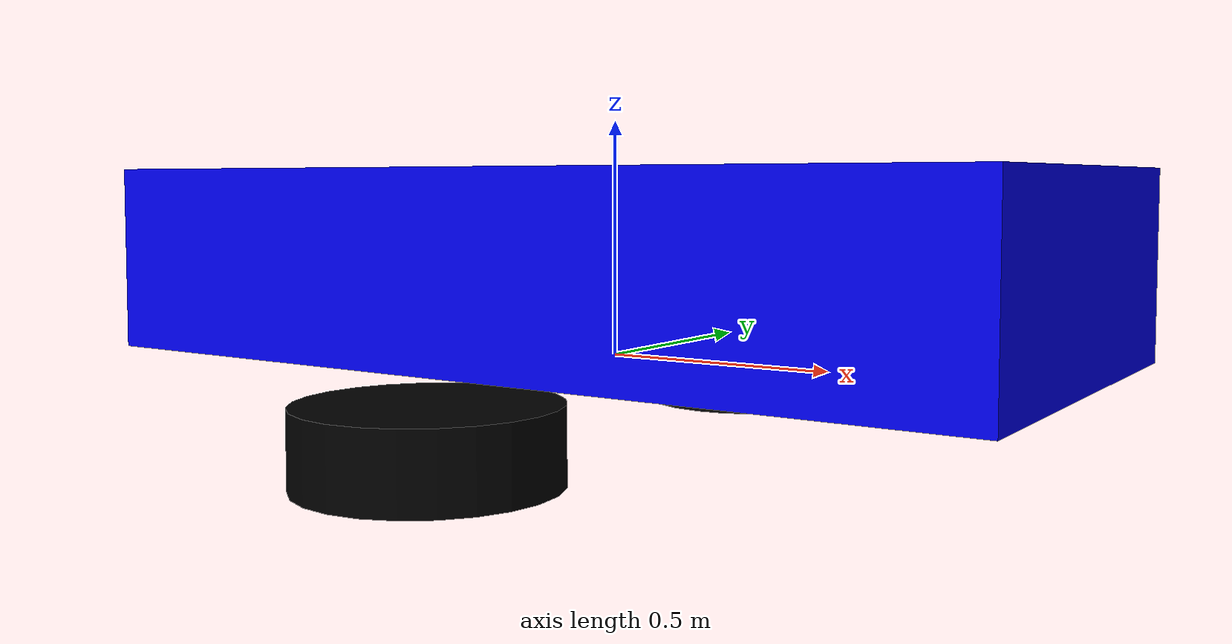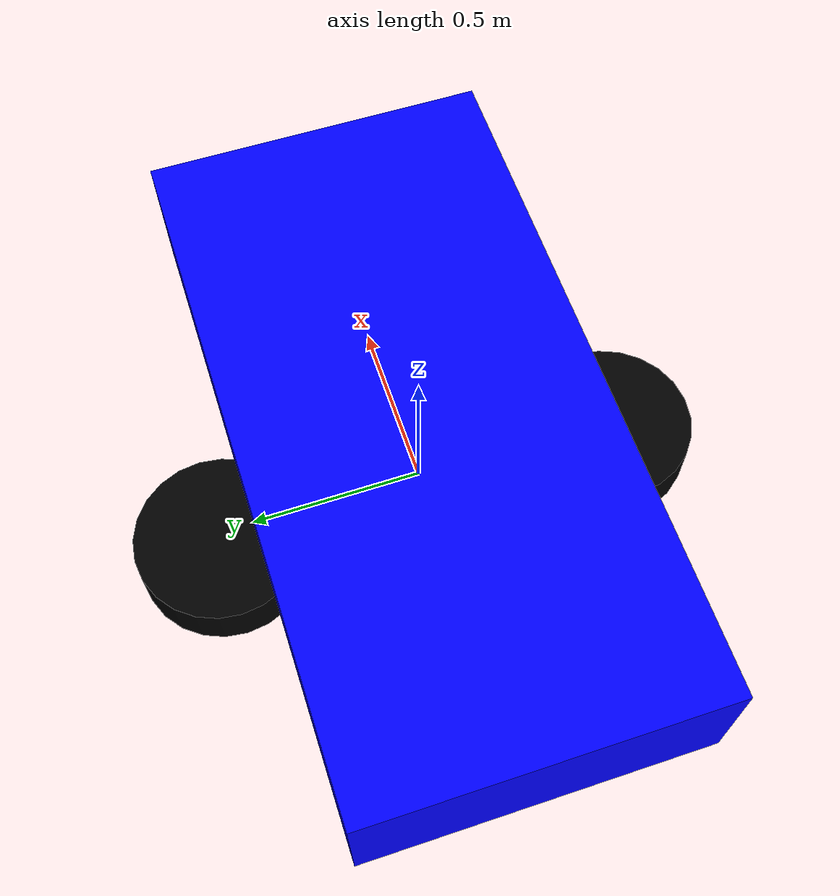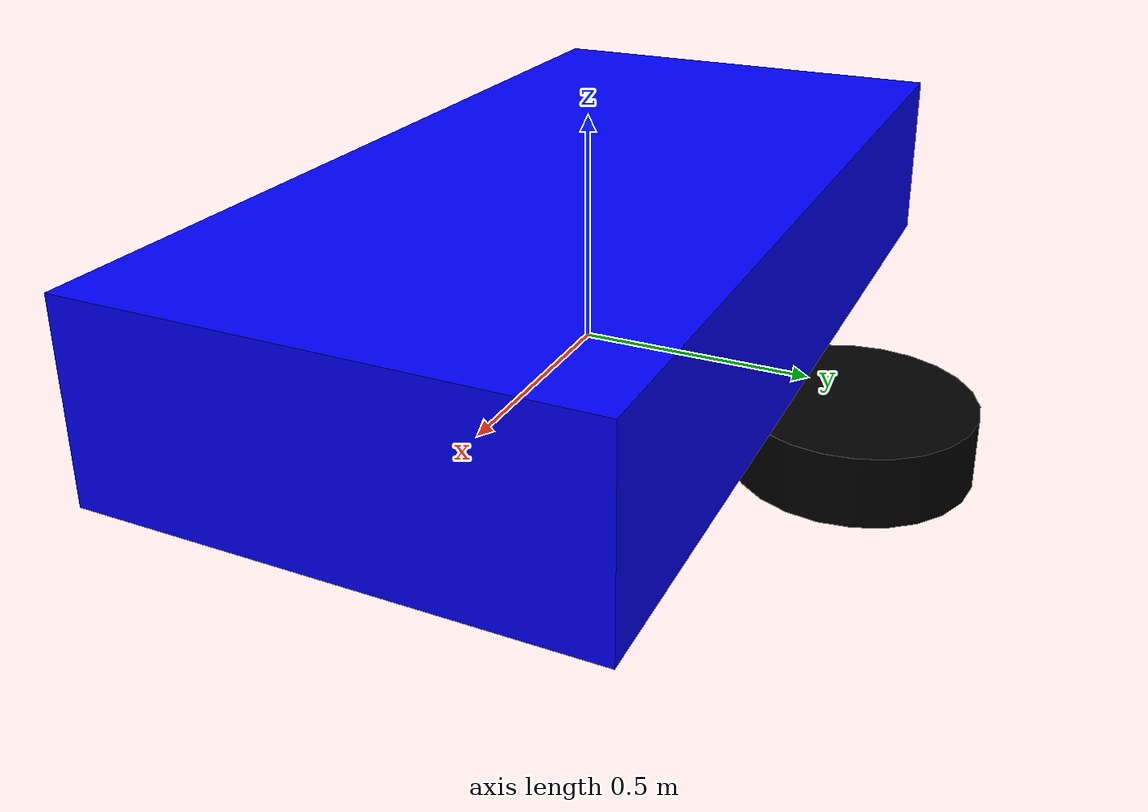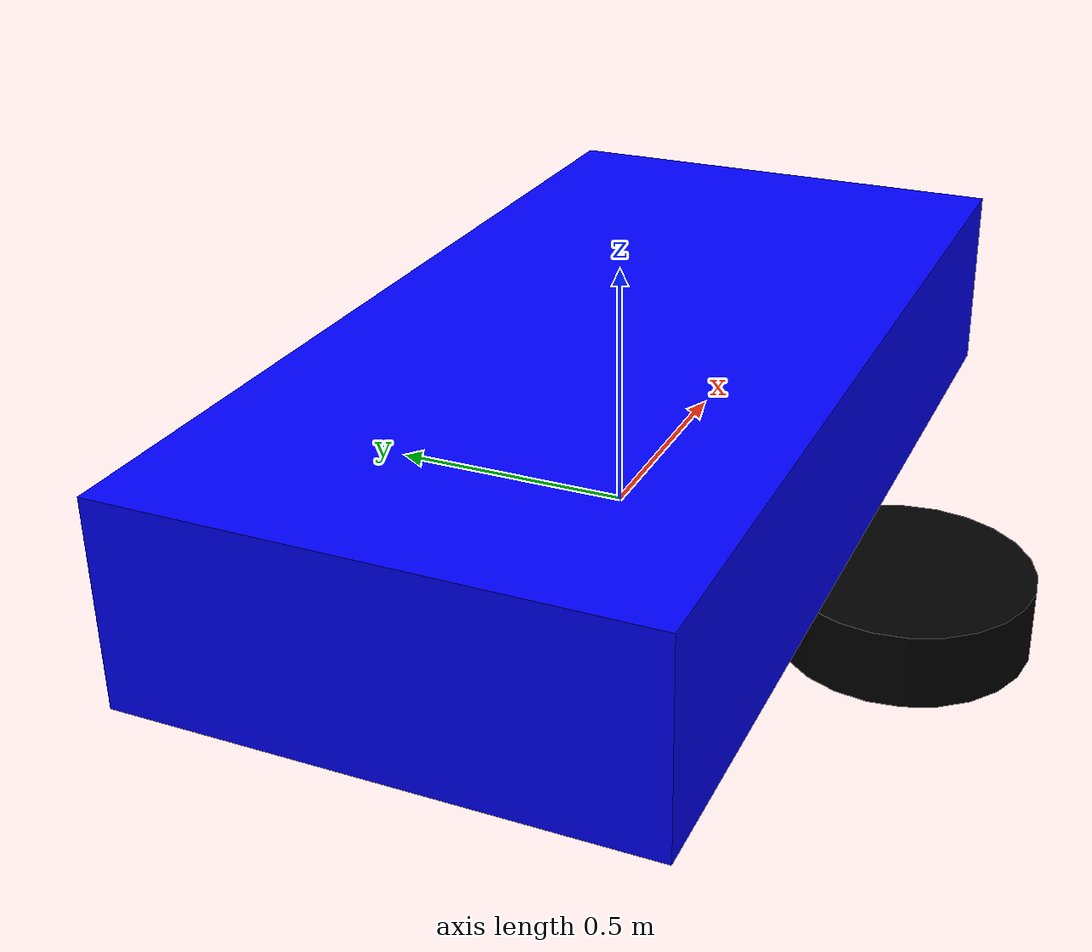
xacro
<?xml version="1.0"?>
<robot name="car">

    <!-- ===== 运动学车辆模型: 两轮差速 + 高摩擦 ===== -->

    <material name="blue"><color rgba="0.0 0.0 1.0 1.0"/></material>
    <material name="black"><color rgba="0.0 0.0 0.0 1.0"/></material>

    <!-- 车身 -->
    <link name="base_link">
        <inertial>
            <origin xyz="0 0 0" rpy="0 0 0"/>
            <mass value="50"/>
            <inertia ixx="5" ixy="0" ixz="0" iyy="10" iyz="0" izz="10"/>
        </inertial>
        <visual>
            <origin xyz="0 0 0.2" rpy="0 0 0"/>
            <geometry>
                <box size="2.0 1.0 0.4"/>
            </geometry>
            <material name="blue"/>
        </visual>
        <collision>
            <origin xyz="0 0 0.2" rpy="0 0 0"/>
            <geometry>
                <box size="2.0 1.0 0.4"/>
            </geometry>
        </collision>
    </link>

    <!-- 左轮 -->
    <link name="left_wheel">
        <inertial>
            <mass value="2"/>
            <inertia ixx="0.02" ixy="0" ixz="0" iyy="0.02" iyz="0" izz="0.02"/>
        </inertial>
        <visual>
            <geometry>
                <cylinder radius="0.25" length="0.15"/>
            </geometry>
            <material name="black"/>
        </visual>
        <collision>
            <geometry>
                <cylinder radius="0.25" length="0.15"/>
            </geometry>
        </collision>
    </link>

    <!-- 右轮 -->
    <link name="right_wheel">
        <inertial>
            <mass value="2"/>
            <inertia ixx="0.02" ixy="0" ixz="0" iyy="0.02" iyz="0" izz="0.02"/>
        </inertial>
        <visual>
            <geometry>
                <cylinder radius="0.25" length="0.15"/>
            </geometry>
            <material name="black"/>
        </visual>
        <collision>
            <geometry>
                <cylinder radius="0.25" length="0.15"/>
            </geometry>
        </collision>
    </link>

    <!-- 左轮关节 (带阻尼防振荡) -->
    <joint name="left_wheel_joint" type="continuous">
        <parent link="base_link"/>
        <child link="left_wheel"/>
        <origin xyz="0 0.6 -0.1" rpy="0 0 0"/>
        <axis xyz="0 -1 0"/>
        <dynamics damping="5.0" friction="0.5"/>
    </joint>

    <!-- 右轮关节 (带阻尼防振荡) -->
    <joint name="right_wheel_joint" type="continuous">
        <parent link="base_link"/>
        <child link="right_wheel"/>
        <origin xyz="0 -0.6 -0.1" rpy="0 0 0"/>
        <axis xyz="0 -1 0"/>
        <dynamics damping="5.0" friction="0.5"/>
    </joint>

    <!-- 差速驱动: cmd_vel 订阅 + odom 发布 -->
    <gazebo>
        <plugin name="diff_drive" filename="libgazebo_ros_diff_drive.so">
            <updateRate>100.0</updateRate>
            <leftJoint>left_wheel_joint</leftJoint>
            <rightJoint>right_wheel_joint</rightJoint>
            <wheelSeparation>1.2</wheelSeparation>
            <wheelDiameter>0.5</wheelDiameter>
            <torque>10</torque>
            <commandTopic>cmd_vel</commandTopic>
            <odometryTopic>odom</odometryTopic>
            <odometryFrame>odom</odometryFrame>
            <robotBaseFrame>base_link</robotBaseFrame>
            <publishOdomTF>true</publishOdomTF>
        </plugin>
    </gazebo>

    <!-- 轮子高摩擦 (防打滑) -->
    <gazebo reference="left_wheel">
        <mu1>1.0</mu1>
        <mu2>1.0</mu2>
    </gazebo>
    <gazebo reference="right_wheel">
        <mu1>1.0</mu1>
        <mu2>1.0</mu2>
    </gazebo>

</robot>
